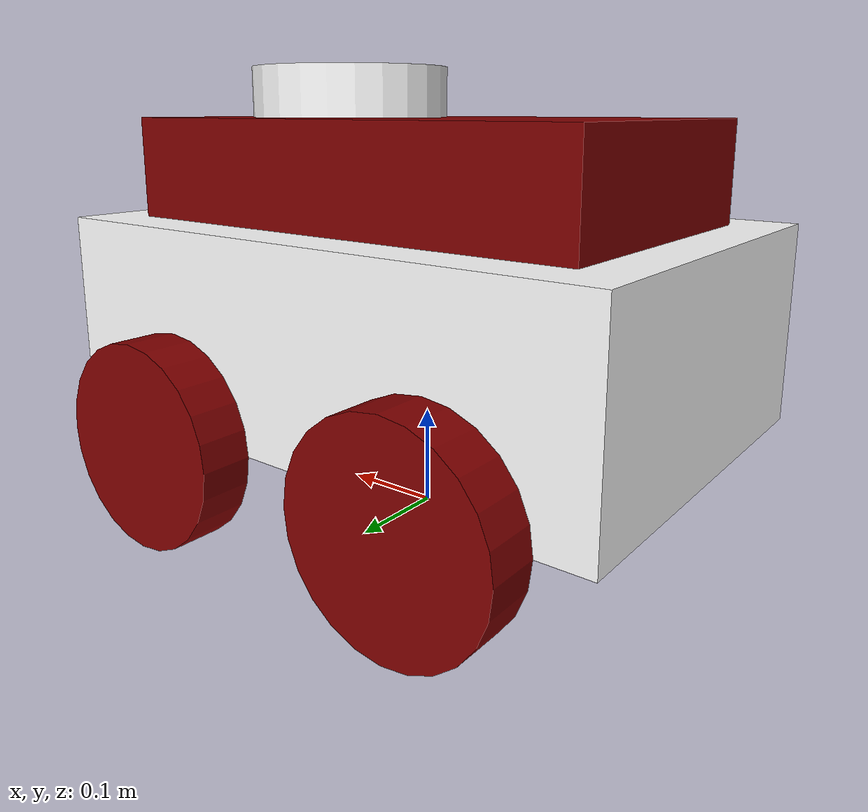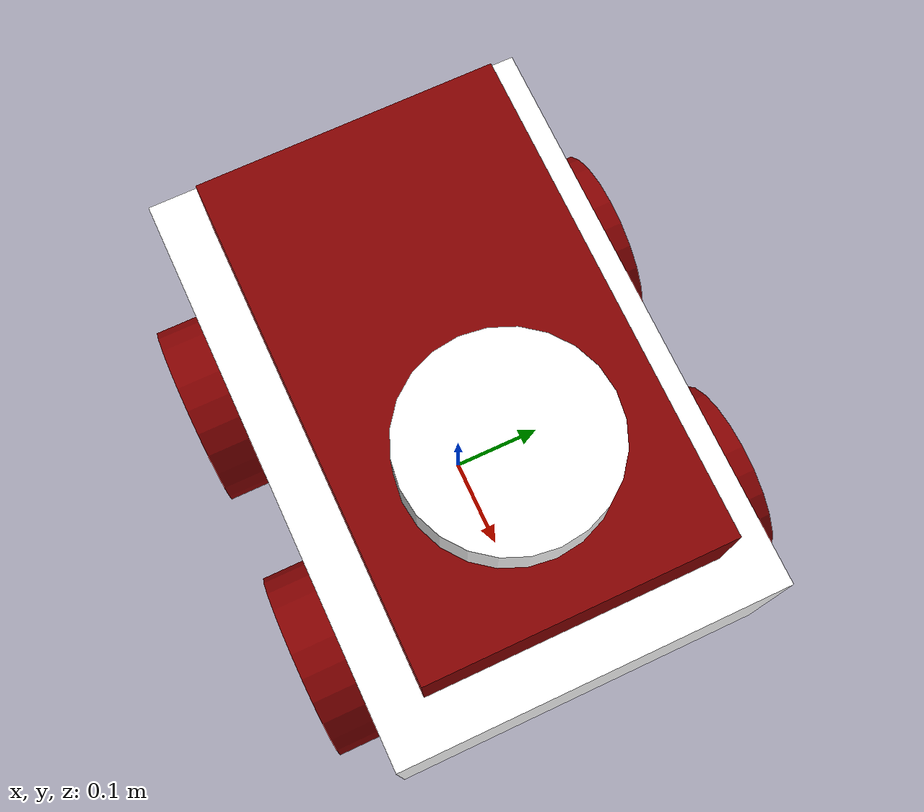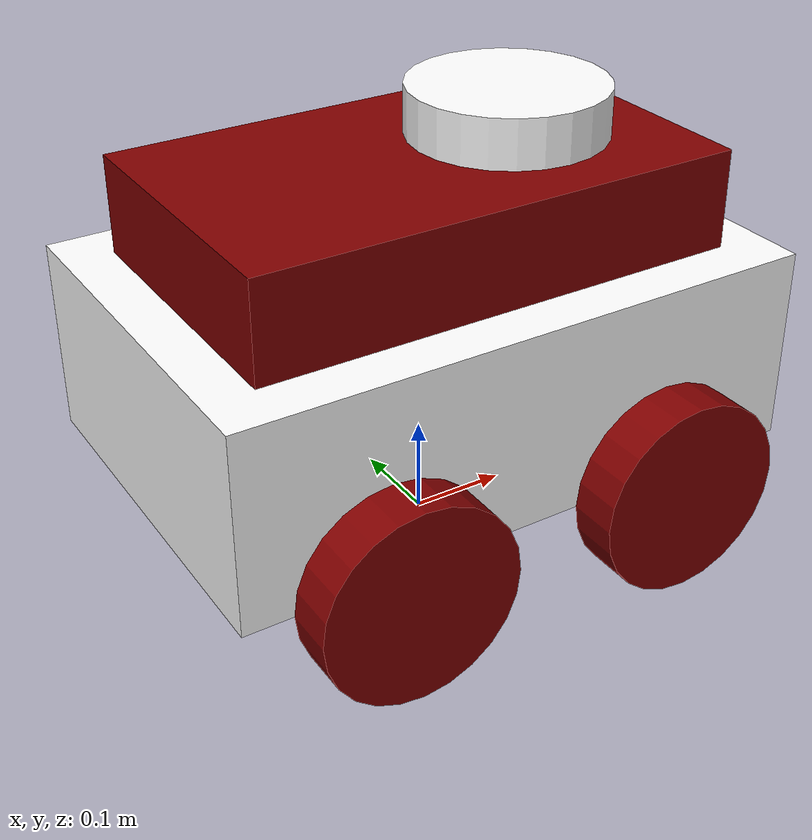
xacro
<?xml version="1.0"?>
<robot name="my_robot" xmlns:xacro="http://www.ros.org/wiki/xacro">

    <xacro:include filename="common_properties.xacro" />
    <xacro:include filename="mobile_base.xacro" />
    <xacro:include filename="ros2_control.xacro" />
    <xacro:include filename="lidar_plugin.xacro" />

</robot>

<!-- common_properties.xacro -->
<robot xmlns:xacro="http://www.ros.org/wiki/xacro">

    <material name ="red">
        <color rgba="0.5 0 0 1" />
    </material>

    <material name ="blue">
        <color rgba="0 0 0.5 1" />
    </material>

    <material name ="grey">
        <color rgba="0.7 0.7 0.7 1" />
    </material>

    <material name ="green">
        <color rgba="0 0.6 0 1" />
    </material>

    <material name ="white">
        <color rgba="1 1 1 1" />
    </material>

    <xacro:macro name="box_inertia" params="m l w h xyz rpy">
        <inertia>
            <origin xvz="${xyz}" rpy="${rpy}" />
            <mass value="${m}"/>
            <inertia ixx ="${(m/12) * (h*h + l*l)}" ixy ="0" ixz="0"
                     iyy ="${(m/12) * (w*w + l*l)}" iyz ="0"
                     izz ="${(m/12) * (w*w + h*h)}" />
        </inertia>
    </xacro:macro>

    <xacro:macro name="cylinder_inertia" params="m r h xyz rpy">
        <inertial>
            <origin xyz="${xyz}" rpy="${rpy}"/>
            <mass value="${m}"/>
            <inertia ixx="${(m/12) * (3*r*r + h*h)}" ixy="0" ixz="0"
                     iyy="${(m/12) * (3*r*r + h*h)}" iyz="0"
                     izz="${(m/2)* (r*r)}" />
        </inertial>
    </xacro:macro>
</robot>

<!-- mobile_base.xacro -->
<robot xmlns:xacro="http://www.ros.org/wiki/xacro">

    <xacro:property name="base_length" value="0.6" />
    <xacro:property name="base_width" value="0.4" />
    <xacro:property name="base_height" value="0.2" />
    <xacro:property name="wheel_radius" value="0.1" />
    <xacro:property name="wheel_length" value="0.05" />

    <link name="base_footprint" />

    <link name="base_link">
        <visual>
            <geometry>
                <box size= "${base_length} ${base_width} ${base_height}" />
            </geometry>
            <origin xyz="0 0 0.1" rpy="0 0 0" />
            <material name="white" />
        </visual>
        <collision>
            <geometry>
                <box size= "${base_length} ${base_width} ${base_height}" />
            </geometry>
            <origin xyz="0 0 0.1" rpy="0 0 0" />
        </collision>
        <xacro:box_inertia m="50.0" l="${6*base_length}" w="${6*base_width}" h="${6*base_height}"
                           xyz="0 0 0.1"  rpy="0 0 0" />
    </link >

    <link name ="lidar">
        <visual>
            <geometry>
                <cylinder radius="0.1" length="0.05" />
            </geometry>
            <origin xyz="0 0 0" rpy="0 0 0" />
            <material name="white" />
        </visual>
        <collision>
            <geometry>
                <cylinder radius="0.1" length="0.05" />
            </geometry>
            <origin xyz="0 0 0" rpy="0 0 0" />
        </collision>
         <xacro:cylinder_inertia m="15.0" r="0.6" h="0.3" xyz="0 0 0" rpy="0 0 0" />
    </link>

    <!--   adding a medi box -->
     <link name ="medi_box">
        <visual>
            <geometry>
                <box size = "0.5 0.3 0.1"/>
            </geometry>
            <origin xyz="0 0 0" rpy="0 0 0" />
            <material name="red" />
        </visual>
        <collision>
            <geometry>
                <box size = "0.5 0.3 0.1"/>
            </geometry>
            <origin xyz="0 0 0" rpy="0 0 0" />
        </collision>
        <xacro:box_inertia m="15.0" l="3.0" w="1.8" h="0.6"
                           xyz="0 0 0"  rpy="0 0 0" />
    </link>
    <!--  end of a medi box -->

    <!--  Start of wheel function -->
    <xacro:macro name="wheel" params="prefix">
            <link name ="${prefix}_wheel">
                <visual>
                    <geometry>
                        <cylinder radius="${wheel_radius}" length="${wheel_length}"/>
                    </geometry>
                    <origin xyz="0 0 0" rpy="1.57 0 0" />
                    <material name="red"/>
                </visual>
                <collision>
                    <geometry>
                        <cylinder radius="${wheel_radius}" length="${wheel_length}"/>
                    </geometry>
                    <origin xyz="0 0 0" rpy="1.57 0 0" />
                </collision>
                <xacro:cylinder_inertia m="10.0" r="${6*wheel_radius}" h="${6*wheel_length}" xyz="0 0 0" rpy="1.57 0 0" />
            </link>
    </xacro:macro>
    <!--  End of wheel function -->

    <xacro:wheel prefix="left" />
    <xacro:wheel prefix="right" />
    <xacro:wheel prefix="front_left" />
    <xacro:wheel prefix="front_right" />

    <!--   joints section  -->
    <joint name="base_joint" type="fixed">
        <parent link="base_footprint" />
        <child link="base_link" />
        <origin xyz="0 0 0.1" rpy="0 0 0" />
    </joint>

    <joint name="base_lidar_joint" type="fixed">
        <parent link="base_link" />
        <child link="lidar" />
        <origin xyz="0.1 0 0.325" rpy="0 0 0" />
    </joint>

     <joint name="base_left_wheel_joint" type="continuous">
        <parent link="base_link" />
        <child link="left_wheel" />
        <origin xyz="-0.15 0.225 0" rpy="0 0 0" />
        <axis xyz="0 1 0" />
    </joint>

    <joint name="base_right_wheel_joint" type="continuous">
        <parent link="base_link" />
        <child link="right_wheel" />
        <origin xyz="${-base_length / 4.0} -0.225 0" rpy="0 0 0" />
        <axis xyz="0 1 0" />
    </joint>

    <!--   joint for medi box  -->
    <joint name="base_medi_box" type="fixed">
        <parent link="base_link" />
        <child link="medi_box" />
        <origin xyz="0 0 0.25" rpy="0 0 0" />
        <axis xyz="0 1 0" />
    </joint>

    <!--   joint for medi box  -->

    <!--   adding a front side wheel -->
    <joint name="base_front_left_wheel_joint" type="continuous">
        <parent link="base_link" />
        <child link="front_left_wheel" />
        <origin xyz="${base_length / 4.0} 0.225 0" rpy="0 0 0" />
        <axis xyz="0 1 0" />
    </joint>

    <joint name="base_front_right_wheel_joint" type="continuous">
        <parent link="base_link" />
        <child link="front_right_wheel" />
        <origin xyz="${base_length / 4.0} -0.225 0" rpy="0 0 0" />
        <axis xyz="0 1 0" />
    </joint>
    <!--   adding a front side wheel -->

</robot>
